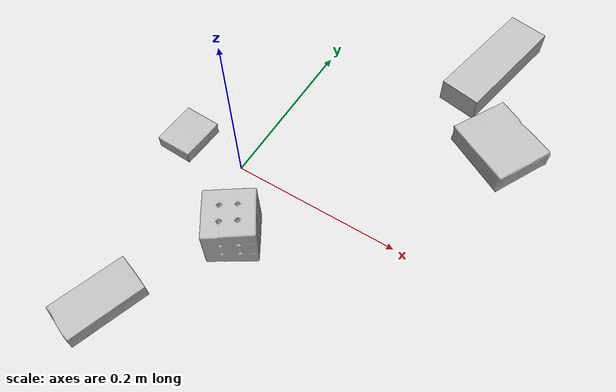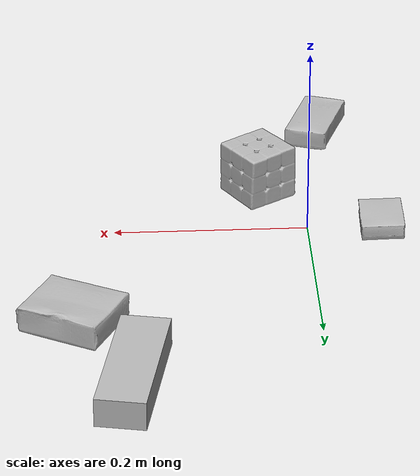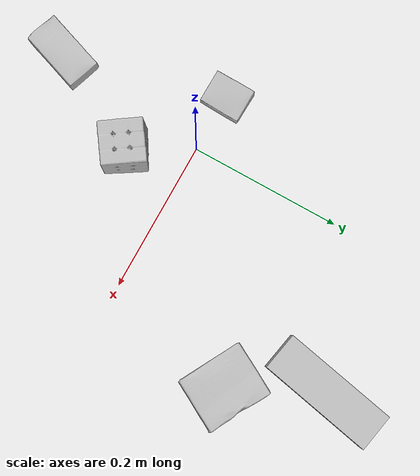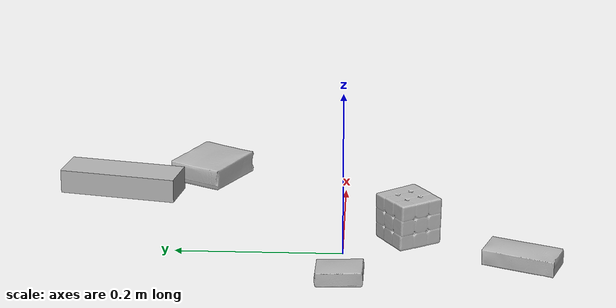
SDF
<sdf version="1.4">
  <world name="default">
    <light name="light1" type="point">
      <pose>0 0 1 0 0 0</pose>
      <diffuse>3 3 3 1</diffuse>
      <specular>3 3 3 1</specular>
    </light>
    <light name="light2" type="point">
      <pose>0 0.5 2 0 0 0</pose>
      <diffuse>1 1 1 1</diffuse>
      <specular>1 1 1 1</specular>
    </light>
    <light name="light3" type="point">
      <pose>0 0.5 2 0 0 0</pose>
      <diffuse>3 3 3 1</diffuse>
      <specular>3 3 3 1</specular>
    </light>
    <scene>
      <ambient>0.7 0.7 0.7</ambient>
    </scene>
    <model name="box1">
      <link name="link_box1">
        <collision name="default">
          <geometry>
            <mesh>
              <uri>model://jenga/collision_meshes/collision.obj</uri>
              <scale>1.0 1.0 1.0</scale>
            </mesh>
          </geometry>
          <surface>
            <friction>
              <ode>
                <mu>0.5</mu>
                <mu2>0.5</mu2>
              </ode>
            </friction>
          <contact>
        <ode>
            <max_vel>0</max_vel>
            <min_depth>0.0001</min_depth>
            <kp>1e8</kp>
        </ode>
    </contact></surface>
        </collision>
        <visual name="default">
          <geometry>
            <mesh>
              <uri>model://jenga/visual_meshes/visual.dae</uri>
              <scale>1.0 1.0 1.0</scale>
            </mesh>
          </geometry>
        </visual>
        <inertial>
          <mass>0.28879067301750183</mass>
          <pose>-2.502855807051674e-07 -0.00010250010382151231 -4.0923401684267446e-05 0.0 -7.342154049184251e-07 0.0</pose>
          <inertia>
            <ixx>7.991539e-05</ixx>
            <iyy>0.00054150453</iyy>
            <izz>0.00057810213</izz>
            <ixy>0</ixy>
            <ixz>0</ixz>
            <iyz>0</iyz>
          </inertia>
        </inertial>
      </link>
      <pose>0.18831655383110046 0.286314994096756 0.014999994076788425 -1.0381869206383093e-09 2.861649165220572e-09 1.3757432764707993</pose>
    </model>
    <model name="box2">
      <link name="link_box2">
        <collision name="default">
          <geometry>
            <mesh>
              <uri>model://sugar_box/collision_meshes/collision.obj</uri>
              <scale>0.5 0.5 0.5</scale>
            </mesh>
          </geometry>
          <surface>
            <friction>
              <ode>
                <mu>0.5</mu>
                <mu2>0.5</mu2>
              </ode>
            </friction>
          <contact>
        <ode>
            <max_vel>0</max_vel>
            <min_depth>0.0001</min_depth>
            <kp>1e8</kp>
        </ode>
    </contact></surface>
        </collision>
        <visual name="default">
          <geometry>
            <mesh>
              <uri>model://sugar_box/visual_meshes/visual.dae</uri>
              <scale>0.5 0.5 0.5</scale>
            </mesh>
          </geometry>
        </visual>
        <inertial>
          <mass>0.10389333218336105</mass>
          <pose>0.000517186417710036 1.9245549992774613e-05 -0.00018182402709499002 -0.00040462615469338603 0.0010506637547558321 0.0026153785561208315</pose>
          <inertia>
            <ixx>2.1640906e-05</ixx>
            <iyy>6.994788e-05</iyy>
            <izz>8.373595e-05</izz>
            <ixy>0</ixy>
            <ixz>0</ixz>
            <iyz>0</iyz>
          </inertia>
        </inertial>
      </link>
      <pose>-0.025002025067806244 -0.21076031029224396 0.011399302631616592 0.0007755228284355375 -0.023432668117303327 1.2267593330244424</pose>
    </model>
    <model name="box3">
      <link name="link_box3">
        <collision name="default">
          <geometry>
            <mesh>
              <uri>model://rubiks_cube/collision_meshes/collision.obj</uri>
              <scale>1.0 1.0 1.0</scale>
            </mesh>
          </geometry>
          <surface>
            <friction>
              <ode>
                <mu>0.5</mu>
                <mu2>0.5</mu2>
              </ode>
            </friction>
          <contact>
        <ode>
            <max_vel>0</max_vel>
            <min_depth>0.0001</min_depth>
            <kp>1e8</kp>
        </ode>
    </contact></surface>
        </collision>
        <visual name="default">
          <geometry>
            <mesh>
              <uri>model://rubiks_cube/visual_meshes/visual.dae</uri>
              <scale>1.0 1.0 1.0</scale>
            </mesh>
          </geometry>
        </visual>
        <inertial>
          <mass>0.21973572671413422</mass>
          <pose>2.6721041649580002e-05 5.256966323941015e-05 -7.264316082000732e-06 -0.054673783840129137 -0.09814154164948871 -0.03445565380518822</pose>
          <inertia>
            <ixx>0.00012141874</ixx>
            <iyy>0.000120852514</iyy>
            <izz>0.00012242487</izz>
            <ixy>0</ixy>
            <ixz>0</ixz>
            <iyz>0</iyz>
          </inertia>
        </inertial>
      </link>
      <pose>0.0466403067111969 -0.0777229592204094 0.02867896668612957 -3.322628283192817e-06 -1.3387387381607515e-06 0.5946386141480708</pose>
    </model>
    <model name="box4">
      <link name="link_box4">
        <collision name="default">
          <geometry>
            <mesh>
              <uri>model://pudding_box/collision_meshes/collision.obj</uri>
              <scale>0.5 0.5 0.5</scale>
            </mesh>
          </geometry>
          <surface>
            <friction>
              <ode>
                <mu>0.5</mu>
                <mu2>0.5</mu2>
              </ode>
            </friction>
          <contact>
        <ode>
            <max_vel>0</max_vel>
            <min_depth>0.0001</min_depth>
            <kp>1e8</kp>
        </ode>
    </contact></surface>
        </collision>
        <visual name="default">
          <geometry>
            <mesh>
              <uri>model://pudding_box/visual_meshes/visual.dae</uri>
              <scale>0.5 0.5 0.5</scale>
            </mesh>
          </geometry>
        </visual>
        <inertial>
          <mass>0.0391676165163517</mass>
          <pose>0.00024474109522998333 0.00040339428232982755 -0.0002594413817860186 0.005213101313254789 -0.0066037982630024914 0.020079830751203582</pose>
          <inertia>
            <ixx>1.1069244e-05</ixx>
            <iyy>7.447467e-06</iyy>
            <izz>1.634663e-05</izz>
            <ixy>0</ixy>
            <ixz>0</ixz>
            <iyz>0</iyz>
          </inertia>
        </inertial>
      </link>
      <pose>-0.07634099572896957 0.0023313541896641254 0.009862902574241161 0.02234849944811227 -0.011391736966904618 3.118346288054613</pose>
    </model>
    <model name="box5">
      <link name="link_box5">
        <collision name="default">
          <geometry>
            <mesh>
              <uri>model://gelatin_box/collision_meshes/collision.obj</uri>
              <scale>1.0 1.0 1.0</scale>
            </mesh>
          </geometry>
          <surface>
            <friction>
              <ode>
                <mu>0.5</mu>
                <mu2>0.5</mu2>
              </ode>
            </friction>
          <contact>
        <ode>
            <max_vel>0</max_vel>
            <min_depth>0.0001</min_depth>
            <kp>1e8</kp>
        </ode>
    </contact></surface>
        </collision>
        <visual name="default">
          <geometry>
            <mesh>
              <uri>model://gelatin_box/visual_meshes/visual.dae</uri>
              <scale>1.0 1.0 1.0</scale>
            </mesh>
          </geometry>
        </visual>
        <inertial>
          <mass>0.24157556891441345</mass>
          <pose>0.0004319618456065655 0.00011156872642459348 -0.0003640321083366871 -0.0010503718658393805 -0.0047558177571565665 0.016440565059328244</pose>
          <inertia>
            <ixx>0.00017053263</ixx>
            <iyy>0.00012181056</iyy>
            <izz>0.00025958868</izz>
            <ixy>0</ixy>
            <ixz>0</ixz>
            <iyz>0</iyz>
          </inertia>
        </inertial>
      </link>
      <pose>0.24433140456676483 0.17562462389469147 0.015168314799666405 0.005597335864857809 -0.007304409600669323 1.0661384505939173</pose>
    </model>
  <physics type="ode">
      <max_contacts>50</max_contacts>
      <ode>
        <solver>
          <type>quick</type>
          <iters>75</iters>
        </solver>
        <constraints>
          <contact_max_correcting_vel>0</contact_max_correcting_vel>
          <contact_surface_layer>0</contact_surface_layer>
        </constraints>
      </ode>
    </physics></world>
</sdf>
